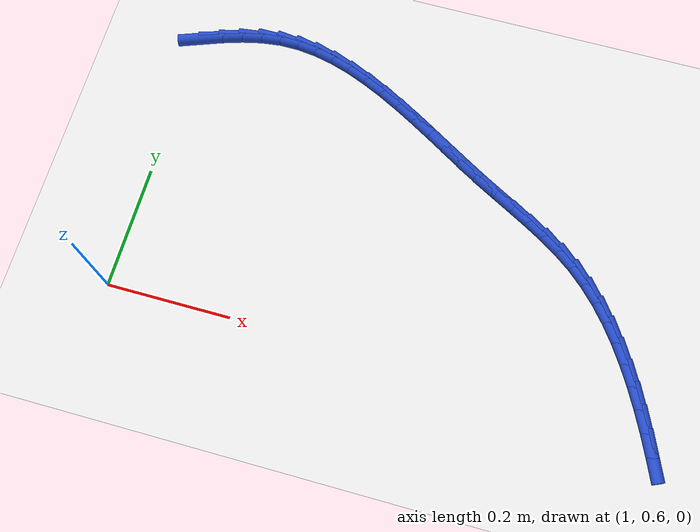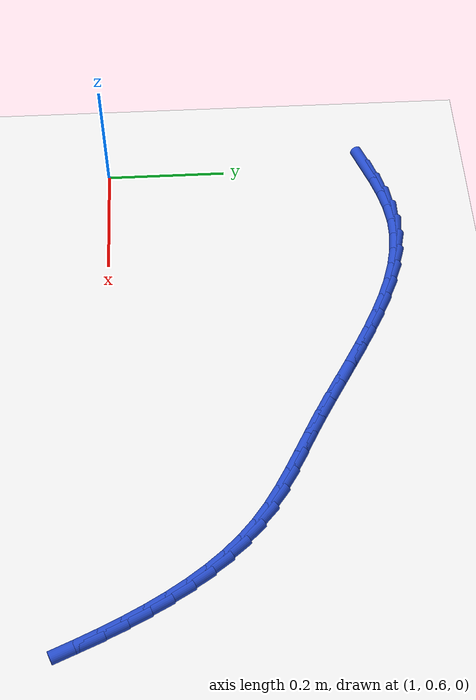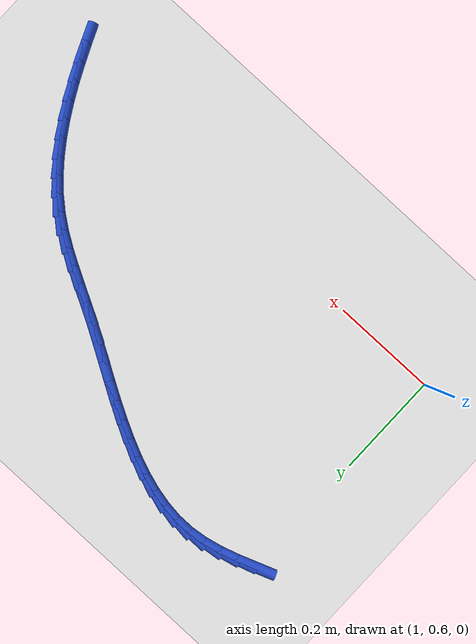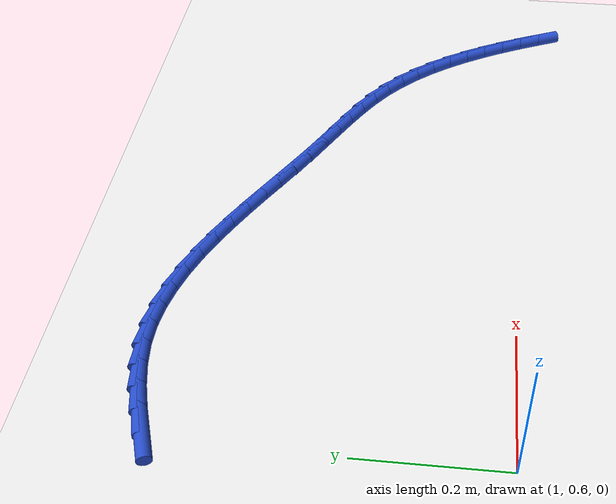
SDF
<sdf version="1.6">
 <world name="default">
  <model name="ground_plane">
   <static>1</static>
   <link name="link">
    <collision name="collision">
     <geometry><plane><normal>0 0 1</normal><size>100 100</size></plane></geometry>
     <surface><friction><ode><mu>100</mu><mu2>50</mu2></ode></friction></surface>
    </collision>
    <visual name="visual">
     <cast_shadows>0</cast_shadows>
     <geometry><plane><normal>0 0 1</normal><size>100 100</size></plane></geometry>
     <material>
      <script><uri>file://media/materials/scripts/gazebo.material</uri><name>Gazebo/WhiteGlow</name></script>
     </material>
    </visual>
   </link>
  </model>
  <model name="line">
   <link name="link_46">
    <pose>1.0049221797159988 1.0489039414353825 0.01 0 1.57 0.3540110989152577</pose>
    <collision name="collision">
     <geometry><cylinder><radius>0.01</radius><length>0.08</length></cylinder></geometry>
    </collision>
    <visual name="visual">
     <material>
      <script><name>Gazebo/Blue</name><uri>file://media/materials/scripts/gazebo.material</uri></script>
     </material>
     <geometry><cylinder><radius>0.01</radius><length>0.08</length></cylinder></geometry>
    </visual>
   </link>
   <link name="link_47">
    <pose>1.0375061055298784 1.060946333028968 0.01 0 1.57 0.3029228911283183</pose>
    <collision name="collision">
     <geometry><cylinder><radius>0.01</radius><length>0.08</length></cylinder></geometry>
    </collision>
    <visual name="visual">
     <material>
      <script><name>Gazebo/Blue</name><uri>file://media/materials/scripts/gazebo.material</uri></script>
     </material>
     <geometry><cylinder><radius>0.01</radius><length>0.08</length></cylinder></geometry>
    </visual>
   </link>
   <link name="link_48">
    <pose>1.0699098947593138 1.07107386958096 0.01 0 1.57 0.22667351596766108</pose>
    <collision name="collision">
     <geometry><cylinder><radius>0.01</radius><length>0.08</length></cylinder></geometry>
    </collision>
    <visual name="visual">
     <material>
      <script><name>Gazebo/Blue</name><uri>file://media/materials/scripts/gazebo.material</uri></script>
     </material>
     <geometry><cylinder><radius>0.01</radius><length>0.08</length></cylinder></geometry>
    </visual>
   </link>
   <link name="link_49">
    <pose>1.1021822564754513 1.0785170776285191 0.01 0 1.57 0.12330573929465422</pose>
    <collision name="collision">
     <geometry><cylinder><radius>0.01</radius><length>0.08</length></cylinder></geometry>
    </collision>
    <visual name="visual">
     <material>
      <script><name>Gazebo/Blue</name><uri>file://media/materials/scripts/gazebo.material</uri></script>
     </material>
     <geometry><cylinder><radius>0.01</radius><length>0.08</length></cylinder></geometry>
    </visual>
   </link>
   <link name="link_50">
    <pose>1.134371899709255 1.0825064846296502 0.01 0 1.57 -0.0007828287084345316</pose>
    <collision name="collision">
     <geometry><cylinder><radius>0.01</radius><length>0.08</length></cylinder></geometry>
    </collision>
    <visual name="visual">
     <material>
      <script><name>Gazebo/Blue</name><uri>file://media/materials/scripts/gazebo.material</uri></script>
     </material>
     <geometry><cylinder><radius>0.01</radius><length>0.08</length></cylinder></geometry>
    </visual>
   </link>
   <link name="link_51">
    <pose>1.166518426157476 1.0824813194007294 0.01 0 1.57 -0.11799859188616538</pose>
    <collision name="collision">
     <geometry><cylinder><radius>0.01</radius><length>0.08</length></cylinder></geometry>
    </collision>
    <visual name="visual">
     <material>
      <script><name>Gazebo/Blue</name><uri>file://media/materials/scripts/gazebo.material</uri></script>
     </material>
     <geometry><cylinder><radius>0.01</radius><length>0.08</length></cylinder></geometry>
    </visual>
   </link>
   <link name="link_52">
    <pose>1.1986267851600196 1.078674895368984 0.01 0 1.57 -0.2198442127290294</pose>
    <collision name="collision">
     <geometry><cylinder><radius>0.01</radius><length>0.08</length></cylinder></geometry>
    </collision>
    <visual name="visual">
     <material>
      <script><name>Gazebo/Blue</name><uri>file://media/materials/scripts/gazebo.material</uri></script>
     </material>
     <geometry><cylinder><radius>0.01</radius><length>0.08</length></cylinder></geometry>
    </visual>
   </link>
   <link name="link_53">
    <pose>1.2306936857451294 1.071509358851439 0.01 0 1.57 -0.3056018217969712</pose>
    <collision name="collision">
     <geometry><cylinder><radius>0.01</radius><length>0.08</length></cylinder></geometry>
    </collision>
    <visual name="visual">
     <material>
      <script><name>Gazebo/Blue</name><uri>file://media/materials/scripts/gazebo.material</uri></script>
     </material>
     <geometry><cylinder><radius>0.01</radius><length>0.08</length></cylinder></geometry>
    </visual>
   </link>
   <link name="link_54">
    <pose>1.262715836941046 1.0614068561651182 0.01 0 1.57 -0.37585171176238286</pose>
    <collision name="collision">
     <geometry><cylinder><radius>0.01</radius><length>0.08</length></cylinder></geometry>
    </collision>
    <visual name="visual">
     <material>
      <script><name>Gazebo/Blue</name><uri>file://media/materials/scripts/gazebo.material</uri></script>
     </material>
     <geometry><cylinder><radius>0.01</radius><length>0.08</length></cylinder></geometry>
    </visual>
   </link>
   <link name="link_55">
    <pose>1.2946899477760132 1.048789533627047 0.01 0 1.57 -0.43179828862515046</pose>
    <collision name="collision">
     <geometry><cylinder><radius>0.01</radius><length>0.08</length></cylinder></geometry>
    </collision>
    <visual name="visual">
     <material>
      <script><name>Gazebo/Blue</name><uri>file://media/materials/scripts/gazebo.material</uri></script>
     </material>
     <geometry><cylinder><radius>0.01</radius><length>0.08</length></cylinder></geometry>
    </visual>
   </link>
   <link name="link_56">
    <pose>1.3266127272782724 1.0340795375542498 0.01 0 1.57 -0.4747919881837959</pose>
    <collision name="collision">
     <geometry><cylinder><radius>0.01</radius><length>0.08</length></cylinder></geometry>
    </collision>
    <visual name="visual">
     <material>
      <script><name>Gazebo/Blue</name><uri>file://media/materials/scripts/gazebo.material</uri></script>
     </material>
     <geometry><cylinder><radius>0.01</radius><length>0.08</length></cylinder></geometry>
    </visual>
   </link>
   <link name="link_57">
    <pose>1.3584808844760656 1.0176990142637505 0.01 0 1.57 -0.5060540508756706</pose>
    <collision name="collision">
     <geometry><cylinder><radius>0.01</radius><length>0.08</length></cylinder></geometry>
    </collision>
    <visual name="visual">
     <material>
      <script><name>Gazebo/Blue</name><uri>file://media/materials/scripts/gazebo.material</uri></script>
     </material>
     <geometry><cylinder><radius>0.01</radius><length>0.08</length></cylinder></geometry>
    </visual>
   </link>
   <link name="link_58">
    <pose>1.3902911283976356 1.0000701100725744 0.01 0 1.57 -0.5265424003015073</pose>
    <collision name="collision">
     <geometry><cylinder><radius>0.01</radius><length>0.08</length></cylinder></geometry>
    </collision>
    <visual name="visual">
     <material>
      <script><name>Gazebo/Blue</name><uri>file://media/materials/scripts/gazebo.material</uri></script>
     </material>
     <geometry><cylinder><radius>0.01</radius><length>0.08</length></cylinder></geometry>
    </visual>
   </link>
   <link name="link_59">
    <pose>1.4220401680712238 0.981614971297746 0.01 0 1.57 -0.5368962742300613</pose>
    <collision name="collision">
     <geometry><cylinder><radius>0.01</radius><length>0.08</length></cylinder></geometry>
    </collision>
    <visual name="visual">
     <material>
      <script><name>Gazebo/Blue</name><uri>file://media/materials/scripts/gazebo.material</uri></script>
     </material>
     <geometry><cylinder><radius>0.01</radius><length>0.08</length></cylinder></geometry>
    </visual>
   </link>
   <link name="link_60">
    <pose>1.4537247125250734 0.9627557442562897 0.01 0 1.57 -0.5374166765083981</pose>
    <collision name="collision">
     <geometry><cylinder><radius>0.01</radius><length>0.08</length></cylinder></geometry>
    </collision>
    <visual name="visual">
     <material>
      <script><name>Gazebo/Blue</name><uri>file://media/materials/scripts/gazebo.material</uri></script>
     </material>
     <geometry><cylinder><radius>0.01</radius><length>0.08</length></cylinder></geometry>
    </visual>
   </link>
   <link name="link_61">
    <pose>1.4853414707874262 0.9439145752652301 0.01 0 1.57 -0.5280583015248342</pose>
    <collision name="collision">
     <geometry><cylinder><radius>0.01</radius><length>0.08</length></cylinder></geometry>
    </collision>
    <visual name="visual">
     <material>
      <script><name>Gazebo/Blue</name><uri>file://media/materials/scripts/gazebo.material</uri></script>
     </material>
     <geometry><cylinder><radius>0.01</radius><length>0.08</length></cylinder></geometry>
    </visual>
   </link>
   <link name="link_62">
    <pose>1.516887151886524 0.9255136106415917 0.01 0 1.57 -0.5090978315281874</pose>
    <collision name="collision">
     <geometry><cylinder><radius>0.01</radius><length>0.08</length></cylinder></geometry>
    </collision>
    <visual name="visual">
     <material>
      <script><name>Gazebo/Blue</name><uri>file://media/materials/scripts/gazebo.material</uri></script>
     </material>
     <geometry><cylinder><radius>0.01</radius><length>0.08</length></cylinder></geometry>
    </visual>
   </link>
   <link name="link_63">
    <pose>1.5483509427278555 0.9079513132214374 0.01 0 1.57 -0.49466513685424995</pose>
    <collision name="collision">
     <geometry><cylinder><radius>0.01</radius><length>0.08</length></cylinder></geometry>
    </collision>
    <visual name="visual">
     <material>
      <script><name>Gazebo/Blue</name><uri>file://media/materials/scripts/gazebo.material</uri></script>
     </material>
     <geometry><cylinder><radius>0.01</radius><length>0.08</length></cylinder></geometry>
    </visual>
   </link>
   <link name="link_64">
    <pose>1.5795603512828413 0.8911170980517203 0.01 0 1.57 -0.49937479113405114</pose>
    <collision name="collision">
     <geometry><cylinder><radius>0.01</radius><length>0.08</length></cylinder></geometry>
    </collision>
    <visual name="visual">
     <material>
      <script><name>Gazebo/Blue</name><uri>file://media/materials/scripts/gazebo.material</uri></script>
     </material>
     <geometry><cylinder><radius>0.01</radius><length>0.08</length></cylinder></geometry>
    </visual>
   </link>
   <link name="link_65">
    <pose>1.6101872611885775 0.8744103953599432 0.01 0 1.57 -0.5247733841061434</pose>
    <collision name="collision">
     <geometry><cylinder><radius>0.01</radius><length>0.08</length></cylinder></geometry>
    </collision>
    <visual name="visual">
     <material>
      <script><name>Gazebo/Blue</name><uri>file://media/materials/scripts/gazebo.material</uri></script>
     </material>
     <geometry><cylinder><radius>0.01</radius><length>0.08</length></cylinder></geometry>
    </visual>
   </link>
   <link name="link_66">
    <pose>1.6398972454323693 0.857210766227747 0.01 0 1.57 -0.5717888677509159</pose>
    <collision name="collision">
     <geometry><cylinder><radius>0.01</radius><length>0.08</length></cylinder></geometry>
    </collision>
    <visual name="visual">
     <material>
      <script><name>Gazebo/Blue</name><uri>file://media/materials/scripts/gazebo.material</uri></script>
     </material>
     <geometry><cylinder><radius>0.01</radius><length>0.08</length></cylinder></geometry>
    </visual>
   </link>
   <link name="link_67">
    <pose>1.6683558770015217 0.8388977717367696 0.01 0 1.57 -0.640927763032633</pose>
    <collision name="collision">
     <geometry><cylinder><radius>0.01</radius><length>0.08</length></cylinder></geometry>
    </collision>
    <visual name="visual">
     <material>
      <script><name>Gazebo/Blue</name><uri>file://media/materials/scripts/gazebo.material</uri></script>
     </material>
     <geometry><cylinder><radius>0.01</radius><length>0.08</length></cylinder></geometry>
    </visual>
   </link>
   <link name="link_68">
    <pose>1.695228730346821 0.8188509756124451 0.01 0 1.57 -0.7264622116394904</pose>
    <collision name="collision">
     <geometry><cylinder><radius>0.01</radius><length>0.08</length></cylinder></geometry>
    </collision>
    <visual name="visual">
     <material>
      <script><name>Gazebo/Blue</name><uri>file://media/materials/scripts/gazebo.material</uri></script>
     </material>
     <geometry><cylinder><radius>0.01</radius><length>0.08</length></cylinder></geometry>
    </visual>
   </link>
   <link name="link_69">
    <pose>1.7202663295713028 0.7966034040195507 0.01 0 1.57 -0.8081109301042511</pose>
    <collision name="collision">
     <geometry><cylinder><radius>0.01</radius><length>0.08</length></cylinder></geometry>
    </collision>
    <visual name="visual">
     <material>
      <script><name>Gazebo/Blue</name><uri>file://media/materials/scripts/gazebo.material</uri></script>
     </material>
     <geometry><cylinder><radius>0.01</radius><length>0.08</length></cylinder></geometry>
    </visual>
   </link>
   <link name="link_70">
    <pose>1.7435330389004884 0.7722550386016166 0.01 0 1.57 -0.8809381319537464</pose>
    <collision name="collision">
     <geometry><cylinder><radius>0.01</radius><length>0.08</length></cylinder></geometry>
    </collision>
    <visual name="visual">
     <material>
      <script><name>Gazebo/Blue</name><uri>file://media/materials/scripts/gazebo.material</uri></script>
     </material>
     <geometry><cylinder><radius>0.01</radius><length>0.08</length></cylinder></geometry>
    </visual>
   </link>
   <link name="link_71">
    <pose>1.7651656817415344 0.7460367592751173 0.01 0 1.57 -0.9449285223393277</pose>
    <collision name="collision">
     <geometry><cylinder><radius>0.01</radius><length>0.08</length></cylinder></geometry>
    </collision>
    <visual name="visual">
     <material>
      <script><name>Gazebo/Blue</name><uri>file://media/materials/scripts/gazebo.material</uri></script>
     </material>
     <geometry><cylinder><radius>0.01</radius><length>0.08</length></cylinder></geometry>
    </visual>
   </link>
   <link name="link_72">
    <pose>1.7853010815016 0.7181794459565285 0.01 0 1.57 -1.0003910972374062</pose>
    <collision name="collision">
     <geometry><cylinder><radius>0.01</radius><length>0.08</length></cylinder></geometry>
    </collision>
    <visual name="visual">
     <material>
      <script><name>Gazebo/Blue</name><uri>file://media/materials/scripts/gazebo.material</uri></script>
     </material>
     <geometry><cylinder><radius>0.01</radius><length>0.08</length></cylinder></geometry>
    </visual>
   </link>
   <link name="link_73">
    <pose>1.8040760615878415 0.6889139785623251 0.01 0 1.57 -1.0478073004338053</pose>
    <collision name="collision">
     <geometry><cylinder><radius>0.01</radius><length>0.08</length></cylinder></geometry>
    </collision>
    <visual name="visual">
     <material>
      <script><name>Gazebo/Blue</name><uri>file://media/materials/scripts/gazebo.material</uri></script>
     </material>
     <geometry><cylinder><radius>0.01</radius><length>0.08</length></cylinder></geometry>
    </visual>
   </link>
   <link name="link_74">
    <pose>1.821627445407416 0.6584712370089815 0.01 0 1.57 -1.0877161553787427</pose>
    <collision name="collision">
     <geometry><cylinder><radius>0.01</radius><length>0.08</length></cylinder></geometry>
    </collision>
    <visual name="visual">
     <material>
      <script><name>Gazebo/Blue</name><uri>file://media/materials/scripts/gazebo.material</uri></script>
     </material>
     <geometry><cylinder><radius>0.01</radius><length>0.08</length></cylinder></geometry>
    </visual>
   </link>
   <link name="link_75">
    <pose>1.8380920563674807 0.6270821012129728 0.01 0 1.57 -1.1206360292493904</pose>
    <collision name="collision">
     <geometry><cylinder><radius>0.01</radius><length>0.08</length></cylinder></geometry>
    </collision>
    <visual name="visual">
     <material>
      <script><name>Gazebo/Blue</name><uri>file://media/materials/scripts/gazebo.material</uri></script>
     </material>
     <geometry><cylinder><radius>0.01</radius><length>0.08</length></cylinder></geometry>
    </visual>
   </link>
   <link name="link_76">
    <pose>1.8536067178751936 0.5949774510907748 0.01 0 1.57 -1.1470150333500257</pose>
    <collision name="collision">
     <geometry><cylinder><radius>0.01</radius><length>0.08</length></cylinder></geometry>
    </collision>
    <visual name="visual">
     <material>
      <script><name>Gazebo/Blue</name><uri>file://media/materials/scripts/gazebo.material</uri></script>
     </material>
     <geometry><cylinder><radius>0.01</radius><length>0.08</length></cylinder></geometry>
    </visual>
   </link>
   <link name="link_77">
    <pose>1.8683082533377118 0.5623881665588613 0.01 0 1.57 -1.1672005587153516</pose>
    <collision name="collision">
     <geometry><cylinder><radius>0.01</radius><length>0.08</length></cylinder></geometry>
    </collision>
    <visual name="visual">
     <material>
      <script><name>Gazebo/Blue</name><uri>file://media/materials/scripts/gazebo.material</uri></script>
     </material>
     <geometry><cylinder><radius>0.01</radius><length>0.08</length></cylinder></geometry>
    </visual>
   </link>
  </model>
 </world>
</sdf>
